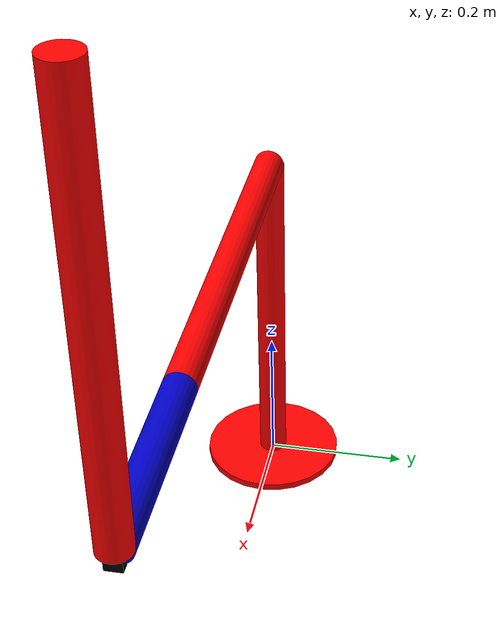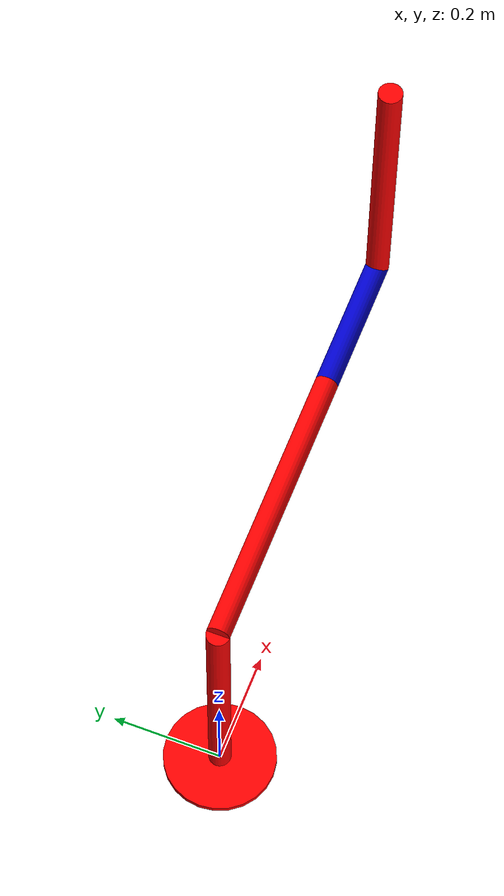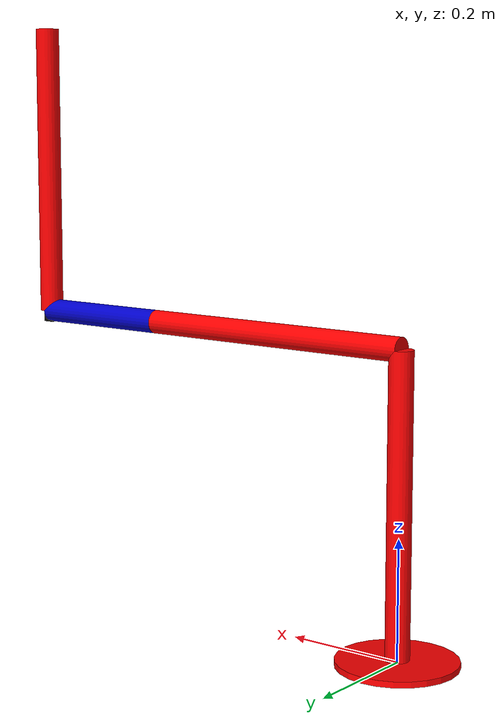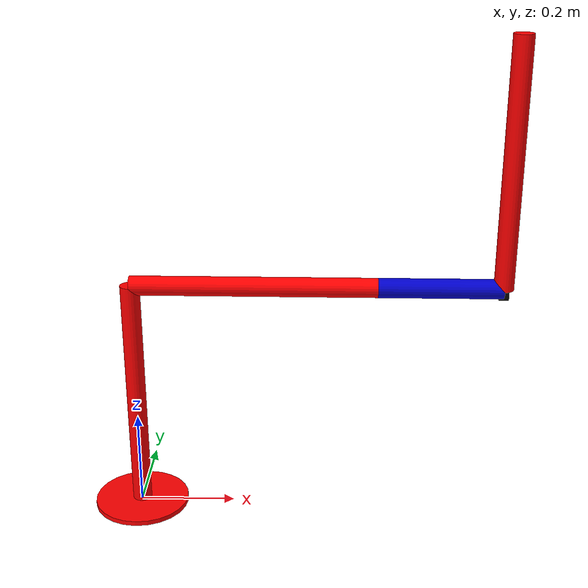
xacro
<?xml version="1.0"?>

<robot name="scara" xmlns:xacro="http://ros.org/wiki/xacro">
    <xacro:property name="pi" value="3.1415"/>
    <xacro:property name="H" value="0.5"/>
    <xacro:property name="L2" value="0.5"/>
    <xacro:property name="L3" value="0.25"/>
    <xacro:property name="d3" value="0.5"/>

    <xacro:macro name="default_inertial" params="mass">
        <inertial>
            <mass value="${mass}" />
        <inertia ixx="1.0" ixy="0.0" ixz="0.0" iyy="1.0" iyz="0.0" izz="1.0" />
        </inertial>
    </xacro:macro>

    <!--DUMMY LINK-->
    <link name="dummy"></link>

    <!--BASE LINK-->
    <xacro:include filename= "$(find robotics)/projects/scara/scara_description/urdf/link0.xacro"/>
    <link name="base_link">
        <xacro:link0/>
        <xacro:default_inertial mass="50"/>

    </link>

    <!--LINK1-->
    <xacro:include filename= "$(find robotics)/projects/scara/scara_description/urdf/link1.xacro"/>
    <xacro:link1 height="${H}" rad="0.02"/>

    <!--LINK2-->
    <xacro:include filename= "$(find robotics)/projects/scara/scara_description/urdf/link2.xacro"/>
    <link name="link2">
        <xacro:link2 height="${L3}" rad="0.02"/>
        <xacro:default_inertial mass="1"/>
    </link>

    <!--LINK3-->
    <xacro:include filename= "$(find robotics)/projects/scara/scara_description/urdf/link3.xacro"/>
    <link name="link3">
        <xacro:link3 height="${d3}" rad="0.02"/>
        <xacro:default_inertial mass="1"/>
    </link>

    <!--LINK4-->
    <xacro:include filename= "$(find robotics)/projects/scara/scara_description/urdf/link4.xacro"/>
    <link name="link4">
        <xacro:link4 side="0.02"/>
        <xacro:default_inertial mass="1"/>
    </link>

    <!--JOINT STUFF-->

    <joint name="dummy_joint" type="fixed">
        <origin xyz="0 0 0" rpy="0 0 0"/>
        <parent link="dummy"/>
        <child link="base_link"/>
    </joint>

    <joint name="joint1" type="revolute">
        <origin xyz="0 0 ${H}" rpy="0 0 0"/>
        <parent link="base_link"/>
        <child link="link1"/>
        <axis xyz="0 0 1"/>
        <limit lower="${-2*pi}" upper="${2*pi}" effort="50" velocity="1"/>
    </joint>

    <joint name="joint2" type="revolute">
        <origin xyz="${L2} 0 0" rpy="0 0 0"/>
        <parent link="link1"/>
        <child link="link2"/>
        <axis xyz="0 0 1"/>
        <limit lower="${-2*pi}" upper="${2*pi}" effort="50" velocity="1"/>

    </joint>

    <joint name="joint3" type="prismatic">
        <origin xyz="${L3} 0 0" rpy="${pi} 0 0"/>
        <parent link="link2"/>
        <child link="link3"/>
        <axis xyz="0 0 1"/>
        <limit lower="0" upper="${d3}" effort="50" velocity="1"/>
    </joint>

    <joint name="joint4" type="revolute">
        <origin xyz="0 0 0" rpy="0 0 ${-pi/2}"/>
        <parent link="link3"/>
        <child link="link4"/>
        <axis xyz="0 0 1"/>
        <limit lower="${-2*pi}" upper="${2*pi}" effort="50" velocity="1"/>

    </joint>

    <!--TRANS STUFF-->

    <transmission name="trans1">
        <type>transmission_interface/SimpleTransmission</type>
        <actuator name="$joint1_motor">
            <mechanicalReduction>1</mechanicalReduction>
        </actuator>
        <joint name="joint1">
            <hardwareInterface>hardware_interface/PositionJointInterface</hardwareInterface>
        </joint>
    </transmission>

    <transmission name="trans2">
        <type>transmission_interface/SimpleTransmission</type>
        <actuator name="$joint2_motor">
            <mechanicalReduction>1</mechanicalReduction>
        </actuator>
        <joint name="joint2">
            <hardwareInterface>hardware_interface/PositionJointInterface</hardwareInterface>
        </joint>
    </transmission>

    <transmission name="trans3">
        <type>transmission_interface/SimpleTransmission</type>
        <actuator name="$joint3_motor">
            <mechanicalReduction>1</mechanicalReduction>
        </actuator>
        <joint name="joint3">
            <hardwareInterface>hardware_interface/PositionJointInterface</hardwareInterface>
        </joint>
    </transmission>

    <transmission name="trans4">
        <type>transmission_interface/SimpleTransmission</type>
        <actuator name="$joint4_motor">
            <mechanicalReduction>1</mechanicalReduction>
        </actuator>
        <joint name="joint4">
            <hardwareInterface>hardware_interface/PositionJointInterface</hardwareInterface>
        </joint>
    </transmission>

     <gazebo>
        <plugin name="gazebo_ros_control" filename="libgazebo_ros_control.so">
        <robotNamespace>/</robotNamespace>
        </plugin>
    </gazebo>

    <xacro:include filename="$(find robotics)/projects/scara/scara_description/urdf/scara.gazebo" />

</robot>

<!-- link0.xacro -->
<robot name="link0" xmlns:xacro="http://ros.org/wiki/xacro">
    <xacro:property name="H" value="0.5"/>
    <xacro:property name="L2" value="0.5"/>
    <xacro:property name="L3" value="0.25"/>
    <xacro:property name="d3" value="0.5"/>

    <material name="black">
        <color rgba="0 0 0 1"/>
    </material>

    <xacro:macro name="default_inertial" params="mass">
        <inertial>
            <mass value="${mass}" />
        <inertia ixx="1.0" ixy="0.0" ixz="0.0" iyy="1.0" iyz="0.0" izz="1.0" />
        </inertial>
    </xacro:macro>

    <xacro:macro name="color">
        <material name="black">
            <color rgba="1 0 0 1"/>
        </material>
    </xacro:macro>

    <xacro:macro name="link0">
        <visual>
            <origin xyz="0 0 0" rpy="0 0 0 "/>
            <geometry>
                <cylinder radius="0.10" length="0.01"/>
            </geometry>
            <xacro:color/>
        </visual>
        <collision>
            <geometry>
                <cylinder radius="0.10" length="0.01"/>
            </geometry>
        </collision>

    </xacro:macro>

    <!--Comment this out when integrating-->

</robot>

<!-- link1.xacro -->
<robot name="link1" xmlns:xacro="http://ros.org/wiki/xacro">
    <xacro:property name="pi" value="3.1415"/>
    <xacro:property name="height" value="0.5"/>
    <xacro:property name="L2" value="0.5"/>
    <xacro:property name="L3" value="0.25"/>
    <xacro:property name="d3" value="0.5"/>

    <xacro:macro name="color">
        <material name="red">
            <color rgba="1 0 0 1"/>
        </material>
    </xacro:macro>

    <xacro:macro name="default_inertial" params="mass">
        <inertial>
            <mass value="${mass}" />
            <inertia ixx="1.0" ixy="0.0" ixz="0.0" iyy="1.0" iyz="0.0" izz="1.0" />
        </inertial>
    </xacro:macro>

    <xacro:macro name="link1" params="height rad">
        <link name = "link1">
            <visual>
                <origin xyz="0 0 ${-height/2}" rpy="0 0 0 "/>
                <geometry>
                    <cylinder radius="${rad}" length="${height}"/>
                </geometry>
                <xacro:color/>
            </visual>
            <collision>
                <origin xyz="0 0 ${height/2}" rpy="0 0 0 "/>
                <geometry>
                    <cylinder radius="${rad}" length="${height}"/>
                </geometry>
            </collision>
            <xacro:default_inertial mass="50"/>
        </link>

        <link name = "dummy1">
            <visual>
                <origin xyz="${height/2} 0 0 " rpy="0 ${pi/2} 0 "/>
                <geometry>
                    <cylinder radius="${rad}" length="${height}"/>
                </geometry>
                <xacro:color/>
            </visual>
            <collision>
                <origin xyz="0 0 ${height/2}" rpy="0 ${pi/2} 0 "/>
                <geometry>
                    <cylinder radius="${rad}" length="${height}"/>
                </geometry>
            </collision>
            <xacro:default_inertial mass="1"/>
        </link>

        <joint name="link1_fixed_joint" type="fixed">
            <origin xyz="0 0 0" rpy="0 0 0"/>
            <parent link="link1"/>
            <child link="dummy1"/>
        </joint>

    </xacro:macro>

    <!--Comment this out when integrating-->

</robot>

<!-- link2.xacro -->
<robot name="link2" xmlns:xacro="http://ros.org/wiki/xacro">
    <xacro:property name="pi" value="3.1415"/>
    <xacro:property name="height" value="0.5"/>
    <xacro:property name="L2" value="0.5"/>
    <xacro:property name="L3" value="0.25"/>
    <xacro:property name="d3" value="0.5"/>

    <xacro:macro name="color">
        <material name="blue">
            <color rgba="0 0 0.8 1"/>
        </material>
    </xacro:macro>

    <xacro:macro name="link2" params="height rad">
        <visual>
            <origin xyz="${height/2} 0 0 " rpy="0 ${pi/2} 0 "/>
            <geometry>
                <cylinder radius="${rad}" length="${height}"/>
            </geometry>
            <xacro:color/>
        </visual>
        <collision>
            <origin xyz="${height/2} 0 0 " rpy="0 ${pi/2} 0 "/>
            <geometry>
                <cylinder radius="${rad}" length="${height}"/>
            </geometry>
        </collision>

    </xacro:macro>

    <!--Comment this out when integrating-->

</robot>

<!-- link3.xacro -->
<robot name="link3" xmlns:xacro="http://ros.org/wiki/xacro">
    <xacro:property name="height" value="0.5"/>
    <xacro:property name="L2" value="0.5"/>
    <xacro:property name="L3" value="0.25"/>
    <xacro:property name="d3" value="0.5"/>

    <xacro:macro name="color">
        <material name="red">
            <color rgba="1 0 0 1"/>
        </material>
    </xacro:macro>

    <xacro:macro name="link3" params="height rad">
        <visual>
            <origin xyz="0 0 ${-height/2}" rpy="0 0 0 "/>
            <geometry>
                <cylinder radius="${rad}" length="${height}"/>
            </geometry>
            <xacro:color/>
        </visual>
        <collision>
            <origin xyz="0 0 ${height/2}" rpy="0 0 0 "/>
            <geometry>
                <cylinder radius="${rad}" length="${height}"/>
            </geometry>
        </collision>

    </xacro:macro>

    <!--Comment this out when integrating-->

</robot>

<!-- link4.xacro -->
<robot name="link4" xmlns:xacro="http://ros.org/wiki/xacro">
    <xacro:property name="H" value="0.5"/>
    <xacro:property name="L2" value="0.5"/>
    <xacro:property name="L3" value="0.25"/>
    <xacro:property name="d3" value="0.5"/>

    <xacro:macro name="color">
        <material name="black">
            <color rgba="0 0 0 1"/>
        </material>
    </xacro:macro>

    <xacro:macro name="link4" params="side">
        <visual>
            <origin xyz="0 0 ${side/2}" rpy="0 0 0 "/>
            <geometry>
                <box size="${side} ${side} ${side}"/>
            </geometry>
            <xacro:color/>
        </visual>
        <collision>
            <origin xyz="0 0 ${side/2}" rpy="0 0 0 "/>
            <geometry>
                <box size="${side} ${side} ${side}"/>
            </geometry>
        </collision>

    </xacro:macro>

    <!--Comment this out when integrating-->

</robot>
